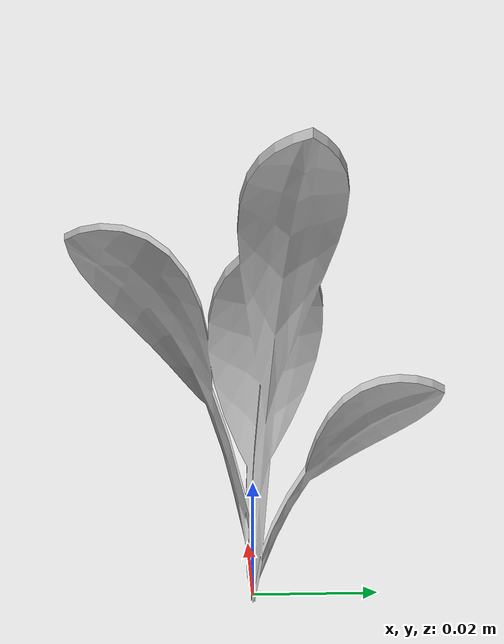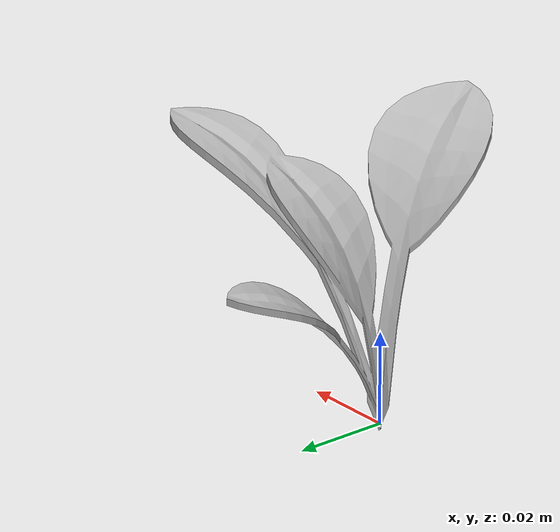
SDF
<sdf version="1.6">
  <model name="sugar_beet_12">
    <static>true</static>
    <link name="body">
      <visual name="visual">
        <geometry>
          <mesh>
            <uri>file:///sugar_beet_12/media/sugar_beet.dae</uri>
          </mesh>
        </geometry>
      </visual>
    </link>
  </model>
</sdf>
